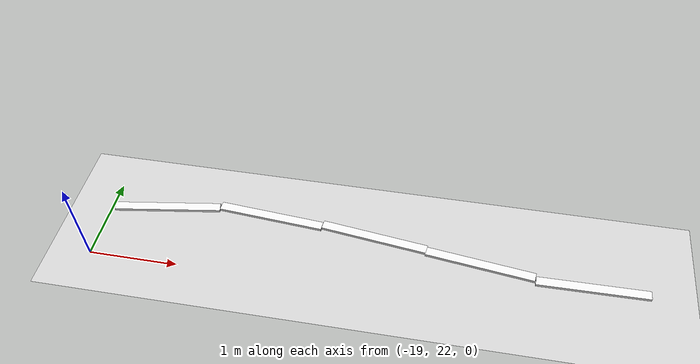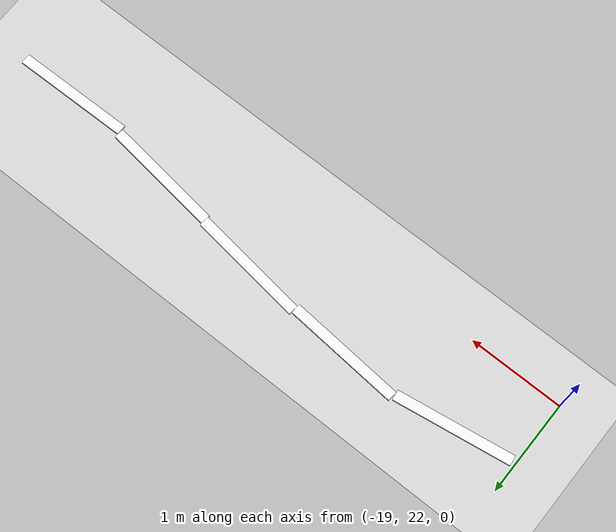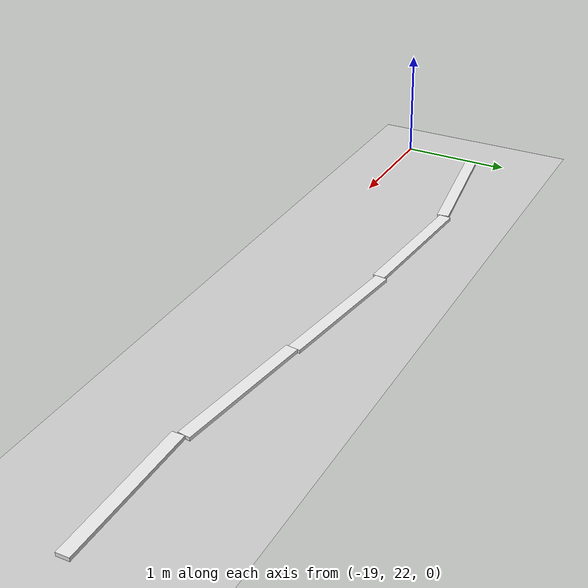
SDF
<sdf version="1.7">
 <world name="default">
  <model name="ground_plane">
   <static>1</static>
   <link name="link">
    <collision name="collision">
     <geometry><plane><normal>0 0 1</normal><size>100 100</size></plane></geometry>
     <surface><friction><ode><mu>100</mu><mu2>50</mu2></ode></friction></surface>
    </collision>
    <visual name="visual">
     <cast_shadows>0</cast_shadows>
     <geometry><plane><normal>0 0 1</normal><size>100 100</size></plane></geometry>
     <material>
      <script><uri>file://media/materials/scripts/gazebo.material</uri><name>Gazebo/Grey</name></script>
     </material>
    </visual>
   </link>
  </model>
  <model name="road_way_clone_clone_clone_0_clone_clone_clone_clone_0_clone_0_clone_0_clone">
   <link name="link">
    <inertial>
     <mass>1</mass>
     <inertia>
      <ixx>0.166667</ixx>
      <ixy>0</ixy>
      <ixz>0</ixz>
      <iyy>0.166667</iyy>
      <iyz>0</iyz>
      <izz>0.166667</izz>
     </inertia>
    </inertial>
    <visual name="visual">
     <geometry><box><size>0.106644 1.22348 0.03129</size></box></geometry>
     <material>
      <script><name>Gazebo/White</name><uri>file://media/materials/scripts/gazebo.material</uri></script>
      <shader type="pixel"><normal_map>__default__</normal_map></shader>
      <ambient>1 1 1 1</ambient>
      <diffuse>1 1 1 1</diffuse>
      <specular>0 0 0 1</specular>
      <emissive>0 0 0 1</emissive>
     </material>
    </visual>
    <collision name="collision">
     <geometry><box><size>0.10644 1.22348 0.03129</size></box></geometry>
     <surface>
      <friction>
       <ode><mu>1</mu><mu2>1</mu2><fdir1>0 0 0</fdir1><slip1>0</slip1><slip2>0</slip2></ode>
       <torsional>
        <coefficient>1</coefficient>
        <patch_radius>0</patch_radius>
        <surface_radius>0</surface_radius>
        <use_patch_radius>1</use_patch_radius>
        <ode><slip>0</slip></ode>
       </torsional>
      </friction>
      <bounce><restitution_coefficient>0</restitution_coefficient><threshold>1e+06</threshold></bounce>
      <contact>
       <collide_without_contact>0</collide_without_contact>
       <collide_without_contact_bitmask>1</collide_without_contact_bitmask>
       <collide_bitmask>1</collide_bitmask>
       <ode>
        <soft_cfm>0</soft_cfm>
        <soft_erp>0.2</soft_erp>
        <kp>1e+13</kp>
        <kd>1</kd>
        <max_vel>0.01</max_vel>
        <min_depth>0</min_depth>
       </ode>
       <bullet>
        <split_impulse>1</split_impulse>
        <split_impulse_penetration_threshold>-0.01</split_impulse_penetration_threshold>
        <soft_cfm>0</soft_cfm>
        <soft_erp>0.2</soft_erp>
        <kp>1e+13</kp>
        <kd>1</kd>
       </bullet>
      </contact>
     </surface>
    </collision>
   </link>
   <static>0</static>
   <pose>-13.4814 22.4562 0.015638 1.1e-05 -0 1.58292</pose>
  </model>
  <model name="road_way_clone_clone_clone_0_clone_clone_clone_clone_0_clone_0_clone_0_clone_clone">
   <link name="link">
    <inertial>
     <mass>1</mass>
     <inertia>
      <ixx>0.166667</ixx>
      <ixy>0</ixy>
      <ixz>0</ixz>
      <iyy>0.166667</iyy>
      <iyz>0</iyz>
      <izz>0.166667</izz>
     </inertia>
    </inertial>
    <visual name="visual">
     <geometry><box><size>0.106644 1.22348 0.03129</size></box></geometry>
     <material>
      <script><name>Gazebo/White</name><uri>file://media/materials/scripts/gazebo.material</uri></script>
      <shader type="pixel"><normal_map>__default__</normal_map></shader>
      <ambient>1 1 1 1</ambient>
      <diffuse>1 1 1 1</diffuse>
      <specular>0 0 0 1</specular>
      <emissive>0 0 0 1</emissive>
     </material>
    </visual>
    <collision name="collision">
     <geometry><box><size>0.10644 1.22348 0.03129</size></box></geometry>
     <surface>
      <friction>
       <ode><mu>1</mu><mu2>1</mu2><fdir1>0 0 0</fdir1><slip1>0</slip1><slip2>0</slip2></ode>
       <torsional>
        <coefficient>1</coefficient>
        <patch_radius>0</patch_radius>
        <surface_radius>0</surface_radius>
        <use_patch_radius>1</use_patch_radius>
        <ode><slip>0</slip></ode>
       </torsional>
      </friction>
      <bounce><restitution_coefficient>0</restitution_coefficient><threshold>1e+06</threshold></bounce>
      <contact>
       <collide_without_contact>0</collide_without_contact>
       <collide_without_contact_bitmask>1</collide_without_contact_bitmask>
       <collide_bitmask>1</collide_bitmask>
       <ode>
        <soft_cfm>0</soft_cfm>
        <soft_erp>0.2</soft_erp>
        <kp>1e+13</kp>
        <kd>1</kd>
        <max_vel>0.01</max_vel>
        <min_depth>0</min_depth>
       </ode>
       <bullet>
        <split_impulse>1</split_impulse>
        <split_impulse_penetration_threshold>-0.01</split_impulse_penetration_threshold>
        <soft_cfm>0</soft_cfm>
        <soft_erp>0.2</soft_erp>
        <kp>1e+13</kp>
        <kd>1</kd>
       </bullet>
      </contact>
     </surface>
    </collision>
   </link>
   <static>0</static>
   <pose>-14.7022 22.5668 0.015638 -1.1e-05 0 1.4426</pose>
  </model>
  <model name="road_way_clone_clone_clone_0_clone_clone_clone_clone_0_clone_0_clone_0_clone_clone_clone">
   <link name="link">
    <inertial>
     <mass>1</mass>
     <inertia>
      <ixx>0.166667</ixx>
      <ixy>0</ixy>
      <ixz>0</ixz>
      <iyy>0.166667</iyy>
      <iyz>0</iyz>
      <izz>0.166667</izz>
     </inertia>
    </inertial>
    <visual name="visual">
     <geometry><box><size>0.106644 1.22348 0.03129</size></box></geometry>
     <material>
      <script><name>Gazebo/White</name><uri>file://media/materials/scripts/gazebo.material</uri></script>
      <shader type="pixel"><normal_map>__default__</normal_map></shader>
      <ambient>1 1 1 1</ambient>
      <diffuse>1 1 1 1</diffuse>
      <specular>0 0 0 1</specular>
      <emissive>0 0 0 1</emissive>
     </material>
    </visual>
    <collision name="collision">
     <geometry><box><size>0.10644 1.22348 0.03129</size></box></geometry>
     <surface>
      <friction>
       <ode><mu>1</mu><mu2>1</mu2><fdir1>0 0 0</fdir1><slip1>0</slip1><slip2>0</slip2></ode>
       <torsional>
        <coefficient>1</coefficient>
        <patch_radius>0</patch_radius>
        <surface_radius>0</surface_radius>
        <use_patch_radius>1</use_patch_radius>
        <ode><slip>0</slip></ode>
       </torsional>
      </friction>
      <bounce><restitution_coefficient>0</restitution_coefficient><threshold>1e+06</threshold></bounce>
      <contact>
       <collide_without_contact>0</collide_without_contact>
       <collide_without_contact_bitmask>1</collide_without_contact_bitmask>
       <collide_bitmask>1</collide_bitmask>
       <ode>
        <soft_cfm>0</soft_cfm>
        <soft_erp>0.2</soft_erp>
        <kp>1e+13</kp>
        <kd>1</kd>
        <max_vel>0.01</max_vel>
        <min_depth>0</min_depth>
       </ode>
       <bullet>
        <split_impulse>1</split_impulse>
        <split_impulse_penetration_threshold>-0.01</split_impulse_penetration_threshold>
        <soft_cfm>0</soft_cfm>
        <soft_erp>0.2</soft_erp>
        <kp>1e+13</kp>
        <kd>1</kd>
       </bullet>
      </contact>
     </surface>
    </collision>
   </link>
   <static>0</static>
   <pose>-15.9133 22.7414 0.015638 -1.1e-05 -0 1.44258</pose>
  </model>
  <model name="road_way_clone_clone_clone_0_clone_clone_clone_clone_0_clone_0_clone_0_clone_clone_clone_clone">
   <link name="link">
    <inertial>
     <mass>1</mass>
     <inertia>
      <ixx>0.166667</ixx>
      <ixy>0</ixy>
      <ixz>0</ixz>
      <iyy>0.166667</iyy>
      <iyz>0</iyz>
      <izz>0.166667</izz>
     </inertia>
    </inertial>
    <visual name="visual">
     <geometry><box><size>0.106644 1.22348 0.03129</size></box></geometry>
     <material>
      <script><name>Gazebo/White</name><uri>file://media/materials/scripts/gazebo.material</uri></script>
      <shader type="pixel"><normal_map>__default__</normal_map></shader>
      <ambient>1 1 1 1</ambient>
      <diffuse>1 1 1 1</diffuse>
      <specular>0 0 0 1</specular>
      <emissive>0 0 0 1</emissive>
     </material>
    </visual>
    <collision name="collision">
     <geometry><box><size>0.10644 1.22348 0.03129</size></box></geometry>
     <surface>
      <friction>
       <ode><mu>1</mu><mu2>1</mu2><fdir1>0 0 0</fdir1><slip1>0</slip1><slip2>0</slip2></ode>
       <torsional>
        <coefficient>1</coefficient>
        <patch_radius>0</patch_radius>
        <surface_radius>0</surface_radius>
        <use_patch_radius>1</use_patch_radius>
        <ode><slip>0</slip></ode>
       </torsional>
      </friction>
      <bounce><restitution_coefficient>0</restitution_coefficient><threshold>1e+06</threshold></bounce>
      <contact>
       <collide_without_contact>0</collide_without_contact>
       <collide_without_contact_bitmask>1</collide_without_contact_bitmask>
       <collide_bitmask>1</collide_bitmask>
       <ode>
        <soft_cfm>0</soft_cfm>
        <soft_erp>0.2</soft_erp>
        <kp>1e+13</kp>
        <kd>1</kd>
        <max_vel>0.01</max_vel>
        <min_depth>0</min_depth>
       </ode>
       <bullet>
        <split_impulse>1</split_impulse>
        <split_impulse_penetration_threshold>-0.01</split_impulse_penetration_threshold>
        <soft_cfm>0</soft_cfm>
        <soft_erp>0.2</soft_erp>
        <kp>1e+13</kp>
        <kd>1</kd>
       </bullet>
      </contact>
     </surface>
    </collision>
   </link>
   <static>0</static>
   <pose>-17.1344 22.8428 0.015638 -1.1e-05 -0 1.49021</pose>
  </model>
  <model name="road_way_clone_clone_clone_0_clone_clone_clone_clone_0_clone_0_clone_0_clone_clone_clone_clone_clone">
   <link name="link">
    <inertial>
     <mass>1</mass>
     <inertia>
      <ixx>0.166667</ixx>
      <ixy>0</ixy>
      <ixz>0</ixz>
      <iyy>0.166667</iyy>
      <iyz>0</iyz>
      <izz>0.166667</izz>
     </inertia>
    </inertial>
    <visual name="visual">
     <geometry><box><size>0.106644 1.22348 0.03129</size></box></geometry>
     <material>
      <script><name>Gazebo/White</name><uri>file://media/materials/scripts/gazebo.material</uri></script>
      <shader type="pixel"><normal_map>__default__</normal_map></shader>
      <ambient>1 1 1 1</ambient>
      <diffuse>1 1 1 1</diffuse>
      <specular>0 0 0 1</specular>
      <emissive>0 0 0 1</emissive>
     </material>
    </visual>
    <collision name="collision">
     <geometry><box><size>0.10644 1.22348 0.03129</size></box></geometry>
     <surface>
      <friction>
       <ode><mu>1</mu><mu2>1</mu2><fdir1>0 0 0</fdir1><slip1>0</slip1><slip2>0</slip2></ode>
       <torsional>
        <coefficient>1</coefficient>
        <patch_radius>0</patch_radius>
        <surface_radius>0</surface_radius>
        <use_patch_radius>1</use_patch_radius>
        <ode><slip>0</slip></ode>
       </torsional>
      </friction>
      <bounce><restitution_coefficient>0</restitution_coefficient><threshold>1e+06</threshold></bounce>
      <contact>
       <collide_without_contact>0</collide_without_contact>
       <collide_without_contact_bitmask>1</collide_without_contact_bitmask>
       <collide_bitmask>1</collide_bitmask>
       <ode>
        <soft_cfm>0</soft_cfm>
        <soft_erp>0.2</soft_erp>
        <kp>1e+13</kp>
        <kd>1</kd>
        <max_vel>0.01</max_vel>
        <min_depth>0</min_depth>
       </ode>
       <bullet>
        <split_impulse>1</split_impulse>
        <split_impulse_penetration_threshold>-0.01</split_impulse_penetration_threshold>
        <soft_cfm>0</soft_cfm>
        <soft_erp>0.2</soft_erp>
        <kp>1e+13</kp>
        <kd>1</kd>
       </bullet>
      </contact>
     </surface>
    </collision>
   </link>
   <static>0</static>
   <pose>-18.3572 22.7732 0.015638 -1.1e-05 -0 1.7217</pose>
  </model>
 </world>
</sdf>
